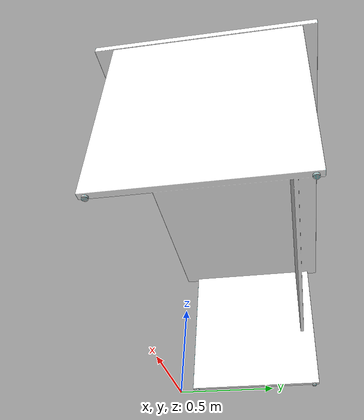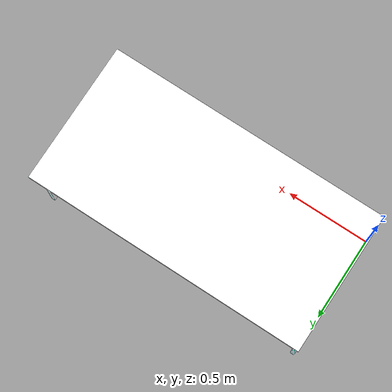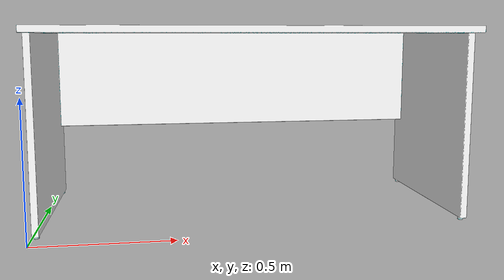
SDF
<?xml version="1.0"?>

<sdf version="1.4">
    <model name="smallTable1">
        <static>true</static>
        <link name="smallTable1_link">

            <visual name="smallTable1_mesh">
                <geometry>
                    <mesh>
                        <uri>model://smallTable1/meshes/model.dae</uri>
                    </mesh>
                </geometry>
            </visual>

            <collision name="smallTable1_collison">
                <pose>0.800299 0.401553 0.384317</pose>
                <geometry>
                    <box>
                        <size>1.6356 0.8 0.7284</size>
                    </box>
                </geometry>
            </collision>
        </link>
    </model>
</sdf>
